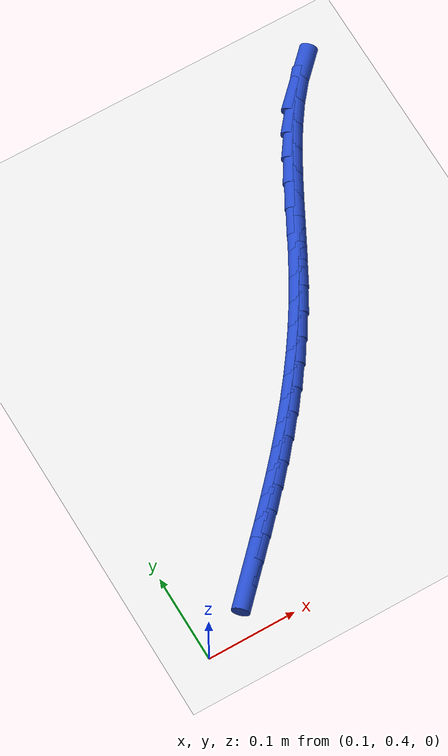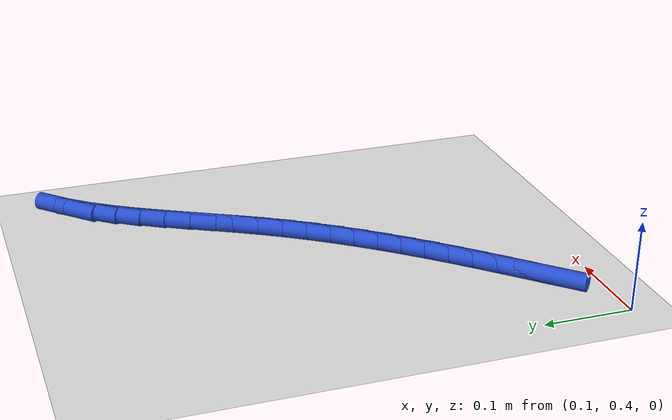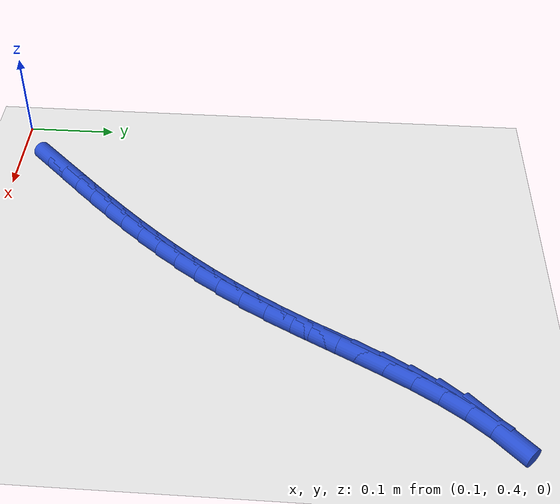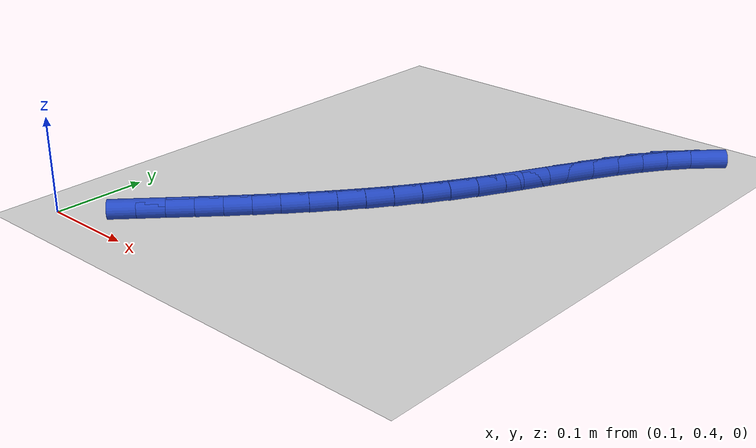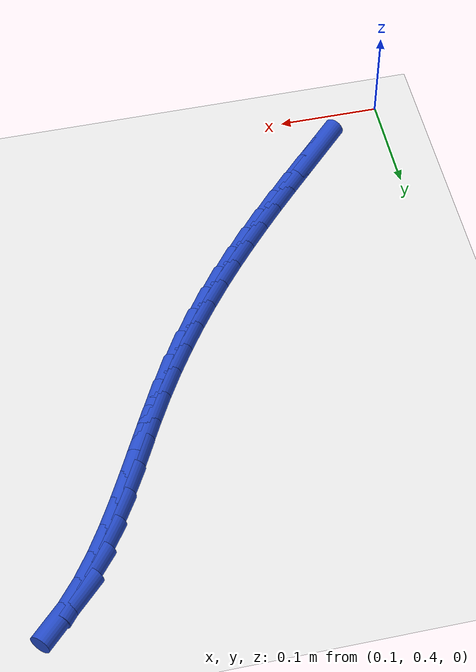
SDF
<sdf version="1.6">
 <world name="default">
  <model name="ground_plane">
   <static>1</static>
   <link name="link">
    <collision name="collision">
     <geometry><plane><normal>0 0 1</normal><size>100 100</size></plane></geometry>
     <surface><friction><ode><mu>100</mu><mu2>50</mu2></ode></friction></surface>
    </collision>
    <visual name="visual">
     <cast_shadows>0</cast_shadows>
     <geometry><plane><normal>0 0 1</normal><size>100 100</size></plane></geometry>
     <material>
      <script><uri>file://media/materials/scripts/gazebo.material</uri><name>Gazebo/WhiteGlow</name></script>
     </material>
    </visual>
   </link>
  </model>
  <model name="line">
   <link name="link_18">
    <pose>0.17827256461685392 0.453024997347805 0.01 0 1.57 0.8025018833100955</pose>
    <collision name="collision">
     <geometry><cylinder><radius>0.01</radius><length>0.08</length></cylinder></geometry>
    </collision>
    <visual name="visual">
     <material>
      <script><name>Gazebo/Blue</name><uri>file://media/materials/scripts/gazebo.material</uri></script>
     </material>
     <geometry><cylinder><radius>0.01</radius><length>0.08</length></cylinder></geometry>
    </visual>
   </link>
   <link name="link_19">
    <pose>0.19809079459916956 0.47353302358666155 0.01 0 1.57 0.8034587282132746</pose>
    <collision name="collision">
     <geometry><cylinder><radius>0.01</radius><length>0.08</length></cylinder></geometry>
    </collision>
    <visual name="visual">
     <material>
      <script><name>Gazebo/Blue</name><uri>file://media/materials/scripts/gazebo.material</uri></script>
     </material>
     <geometry><cylinder><radius>0.01</radius><length>0.08</length></cylinder></geometry>
    </visual>
   </link>
   <link name="link_20">
    <pose>0.21778274197497038 0.49394942924266244 0.01 0 1.57 0.8120332511163459</pose>
    <collision name="collision">
     <geometry><cylinder><radius>0.01</radius><length>0.08</length></cylinder></geometry>
    </collision>
    <visual name="visual">
     <material>
      <script><name>Gazebo/Blue</name><uri>file://media/materials/scripts/gazebo.material</uri></script>
     </material>
     <geometry><cylinder><radius>0.01</radius><length>0.08</length></cylinder></geometry>
    </visual>
   </link>
   <link name="link_21">
    <pose>0.2371333449957688 0.5143593066522519 0.01 0 1.57 0.8259299389931999</pose>
    <collision name="collision">
     <geometry><cylinder><radius>0.01</radius><length>0.08</length></cylinder></geometry>
    </collision>
    <visual name="visual">
     <material>
      <script><name>Gazebo/Blue</name><uri>file://media/materials/scripts/gazebo.material</uri></script>
     </material>
     <geometry><cylinder><radius>0.01</radius><length>0.08</length></cylinder></geometry>
    </visual>
   </link>
   <link name="link_22">
    <pose>0.2560338677767003 0.5348576088177052 0.01 0 1.57 0.8429312597894141</pose>
    <collision name="collision">
     <geometry><cylinder><radius>0.01</radius><length>0.08</length></cylinder></geometry>
    </collision>
    <visual name="visual">
     <material>
      <script><name>Gazebo/Blue</name><uri>file://media/materials/scripts/gazebo.material</uri></script>
     </material>
     <geometry><cylinder><radius>0.01</radius><length>0.08</length></cylinder></geometry>
    </visual>
   </link>
   <link name="link_23">
    <pose>0.2744707679221668 0.5555481169901817 0.01 0 1.57 0.8628735238864457</pose>
    <collision name="collision">
     <geometry><cylinder><radius>0.01</radius><length>0.08</length></cylinder></geometry>
    </collision>
    <visual name="visual">
     <material>
      <script><name>Gazebo/Blue</name><uri>file://media/materials/scripts/gazebo.material</uri></script>
     </material>
     <geometry><cylinder><radius>0.01</radius><length>0.08</length></cylinder></geometry>
    </visual>
   </link>
   <link name="link_24">
    <pose>0.2924338649714685 0.5765349242068498 0.01 0 1.57 0.885613328818217</pose>
    <collision name="collision">
     <geometry><cylinder><radius>0.01</radius><length>0.08</length></cylinder></geometry>
    </collision>
    <visual name="visual">
     <material>
      <script><name>Gazebo/Blue</name><uri>file://media/materials/scripts/gazebo.material</uri></script>
     </material>
     <geometry><cylinder><radius>0.01</radius><length>0.08</length></cylinder></geometry>
    </visual>
   </link>
   <link name="link_25">
    <pose>0.30991297846390525 0.5979221235048774 0.01 0 1.57 0.9109472757408055</pose>
    <collision name="collision">
     <geometry><cylinder><radius>0.01</radius><length>0.08</length></cylinder></geometry>
    </collision>
    <visual name="visual">
     <material>
      <script><name>Gazebo/Blue</name><uri>file://media/materials/scripts/gazebo.material</uri></script>
     </material>
     <geometry><cylinder><radius>0.01</radius><length>0.08</length></cylinder></geometry>
    </visual>
   </link>
   <link name="link_26">
    <pose>0.3268979279387771 0.619813807921432 0.01 0 1.57 0.9386138345866768</pose>
    <collision name="collision">
     <geometry><cylinder><radius>0.01</radius><length>0.08</length></cylinder></geometry>
    </collision>
    <visual name="visual">
     <material>
      <script><name>Gazebo/Blue</name><uri>file://media/materials/scripts/gazebo.material</uri></script>
     </material>
     <geometry><cylinder><radius>0.01</radius><length>0.08</length></cylinder></geometry>
    </visual>
   </link>
   <link name="link_27">
    <pose>0.3433785329353842 0.642314070493682 0.01 0 1.57 0.9682987386237965</pose>
    <collision name="collision">
     <geometry><cylinder><radius>0.01</radius><length>0.08</length></cylinder></geometry>
    </collision>
    <visual name="visual">
     <material>
      <script><name>Gazebo/Blue</name><uri>file://media/materials/scripts/gazebo.material</uri></script>
     </material>
     <geometry><cylinder><radius>0.01</radius><length>0.08</length></cylinder></geometry>
    </visual>
   </link>
   <link name="link_28">
    <pose>0.35934461299302645 0.6655270042587953 0.01 0 1.57 0.9996440361477207</pose>
    <collision name="collision">
     <geometry><cylinder><radius>0.01</radius><length>0.08</length></cylinder></geometry>
    </collision>
    <visual name="visual">
     <material>
      <script><name>Gazebo/Blue</name><uri>file://media/materials/scripts/gazebo.material</uri></script>
     </material>
     <geometry><cylinder><radius>0.01</radius><length>0.08</length></cylinder></geometry>
    </visual>
   </link>
   <link name="link_29">
    <pose>0.37478598765100407 0.68955670225394 0.01 0 1.57 1.032260447206589</pose>
    <collision name="collision">
     <geometry><cylinder><radius>0.01</radius><length>0.08</length></cylinder></geometry>
    </collision>
    <visual name="visual">
     <material>
      <script><name>Gazebo/Blue</name><uri>file://media/materials/scripts/gazebo.material</uri></script>
     </material>
     <geometry><cylinder><radius>0.01</radius><length>0.08</length></cylinder></geometry>
    </visual>
   </link>
   <link name="link_30">
    <pose>0.3896924764486169 0.7145072575162833 0.01 0 1.57 1.0638584284777615</pose>
    <collision name="collision">
     <geometry><cylinder><radius>0.01</radius><length>0.08</length></cylinder></geometry>
    </collision>
    <visual name="visual">
     <material>
      <script><name>Gazebo/Blue</name><uri>file://media/materials/scripts/gazebo.material</uri></script>
     </material>
     <geometry><cylinder><radius>0.01</radius><length>0.08</length></cylinder></geometry>
    </visual>
   </link>
   <link name="link_31">
    <pose>0.4040833503678762 0.740420633154815 0.01 0 1.57 1.083862108969824</pose>
    <collision name="collision">
     <geometry><cylinder><radius>0.01</radius><length>0.08</length></cylinder></geometry>
    </collision>
    <visual name="visual">
     <material>
      <script><name>Gazebo/Blue</name><uri>file://media/materials/scripts/gazebo.material</uri></script>
     </material>
     <geometry><cylinder><radius>0.01</radius><length>0.08</length></cylinder></geometry>
    </visual>
   </link>
   <link name="link_32">
    <pose>0.418146741156637 0.7669825683964935 0.01 0 1.57 1.0893978605649979</pose>
    <collision name="collision">
     <geometry><cylinder><radius>0.01</radius><length>0.08</length></cylinder></geometry>
    </collision>
    <visual name="visual">
     <material>
      <script><name>Gazebo/Blue</name><uri>file://media/materials/scripts/gazebo.material</uri></script>
     </material>
     <geometry><cylinder><radius>0.01</radius><length>0.08</length></cylinder></geometry>
    </visual>
   </link>
   <link name="link_33">
    <pose>0.43213085361098635 0.7937520740696465 0.01 0 1.57 1.0808209969836258</pose>
    <collision name="collision">
     <geometry><cylinder><radius>0.01</radius><length>0.08</length></cylinder></geometry>
    </collision>
    <visual name="visual">
     <material>
      <script><name>Gazebo/Blue</name><uri>file://media/materials/scripts/gazebo.material</uri></script>
     </material>
     <geometry><cylinder><radius>0.01</radius><length>0.08</length></cylinder></geometry>
    </visual>
   </link>
   <link name="link_34">
    <pose>0.4462839651914178 0.8202880077118311 0.01 0 1.57 1.0577182459632406</pose>
    <collision name="collision">
     <geometry><cylinder><radius>0.01</radius><length>0.08</length></cylinder></geometry>
    </collision>
    <visual name="visual">
     <material>
      <script><name>Gazebo/Blue</name><uri>file://media/materials/scripts/gazebo.material</uri></script>
     </material>
     <geometry><cylinder><radius>0.01</radius><length>0.08</length></cylinder></geometry>
    </visual>
   </link>
   <link name="link_35">
    <pose>0.460854353358425 0.8461492268606053 0.01 0 1.57 1.0189060949640123</pose>
    <collision name="collision">
     <geometry><cylinder><radius>0.01</radius><length>0.08</length></cylinder></geometry>
    </collision>
    <visual name="visual">
     <material>
      <script><name>Gazebo/Blue</name><uri>file://media/materials/scripts/gazebo.material</uri></script>
     </material>
     <geometry><cylinder><radius>0.01</radius><length>0.08</length></cylinder></geometry>
    </visual>
   </link>
   <link name="link_36">
    <pose>0.4760902955725016 0.8708945890535259 0.01 0 1.57 0.9624499634647101</pose>
    <collision name="collision">
     <geometry><cylinder><radius>0.01</radius><length>0.08</length></cylinder></geometry>
    </collision>
    <visual name="visual">
     <material>
      <script><name>Gazebo/Blue</name><uri>file://media/materials/scripts/gazebo.material</uri></script>
     </material>
     <geometry><cylinder><radius>0.01</radius><length>0.08</length></cylinder></geometry>
    </visual>
   </link>
   <link name="link_37">
    <pose>0.4922400692941411 0.8940829518281505 0.01 0 1.57 0.8857900837261249</pose>
    <collision name="collision">
     <geometry><cylinder><radius>0.01</radius><length>0.08</length></cylinder></geometry>
    </collision>
    <visual name="visual">
     <material>
      <script><name>Gazebo/Blue</name><uri>file://media/materials/scripts/gazebo.material</uri></script>
     </material>
     <geometry><cylinder><radius>0.01</radius><length>0.08</length></cylinder></geometry>
    </visual>
   </link>
   <link name="link_38">
    <pose>0.5095519519838368 0.9152731727220363 0.01 0 1.57 0.7861631747263254</pose>
    <collision name="collision">
     <geometry><cylinder><radius>0.01</radius><length>0.08</length></cylinder></geometry>
    </collision>
    <visual name="visual">
     <material>
      <script><name>Gazebo/Blue</name><uri>file://media/materials/scripts/gazebo.material</uri></script>
     </material>
     <geometry><cylinder><radius>0.01</radius><length>0.08</length></cylinder></geometry>
    </visual>
   </link>
  </model>
 </world>
</sdf>
